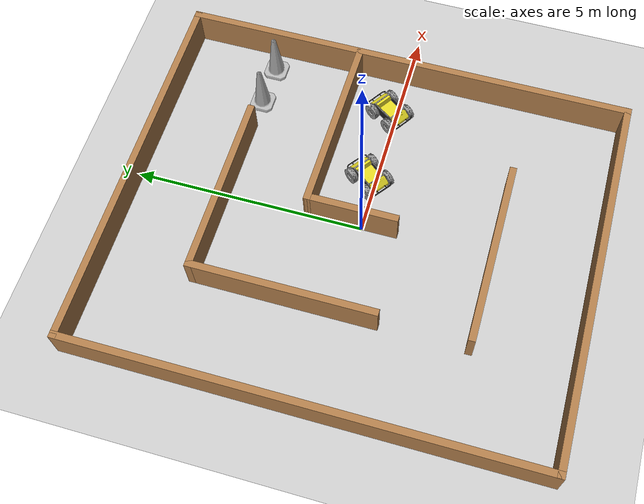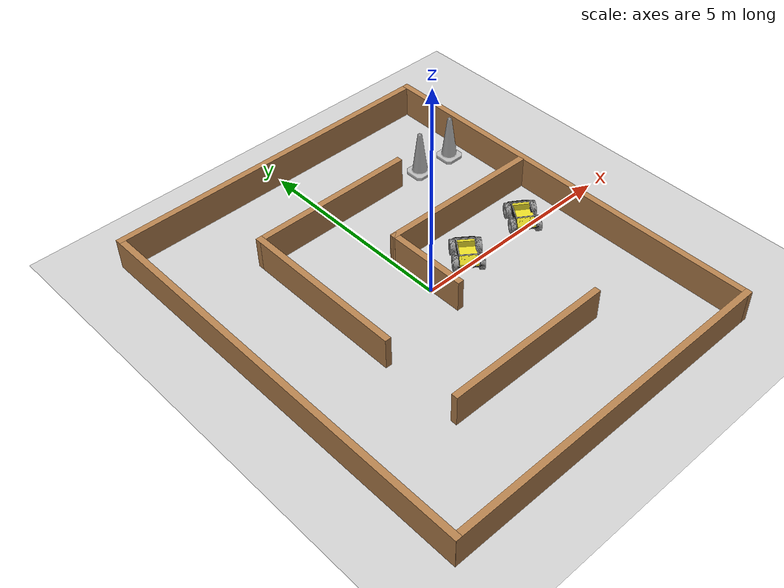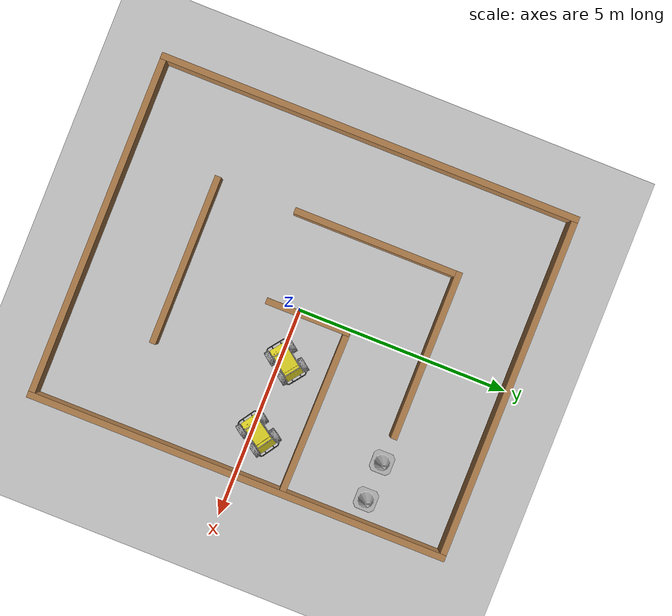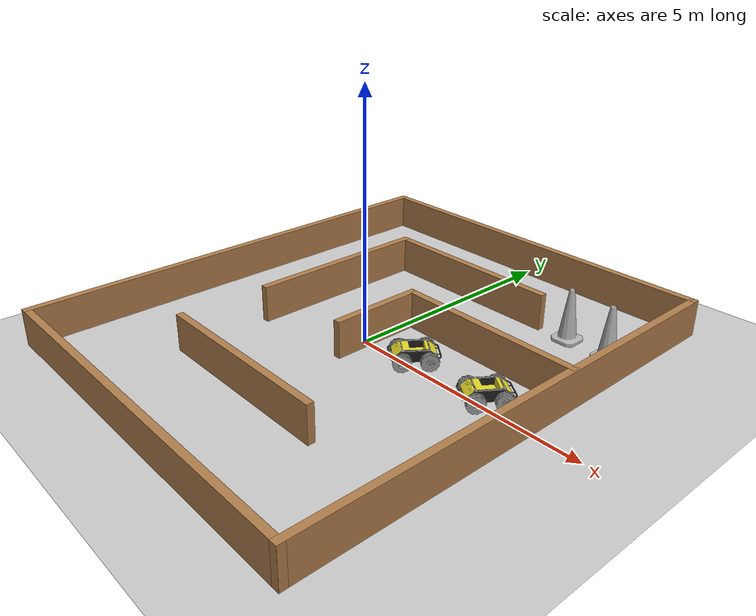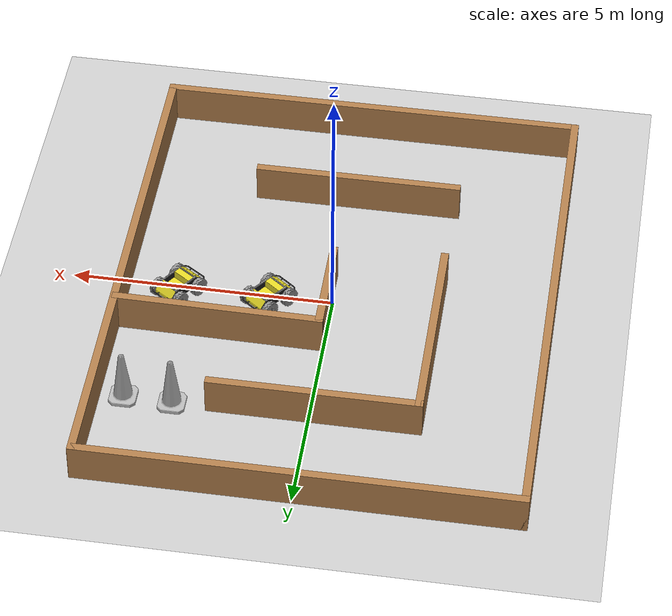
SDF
<sdf version="1.6">
 <world name="default">
  <light name="sun" type="directional">
   <pose>0 0 10 0 -0 0</pose>
   <diffuse>0.8 0.8 0.8 1</diffuse>
   <specular>0.2 0.2 0.2 1</specular>
   <attenuation>
    <range>1000</range>
    <constant>0.9</constant>
    <linear>0.01</linear>
    <quadratic>0.001</quadratic>
   </attenuation>
   <direction>0.5 0.1 -0.9</direction>
  </light>
  <scene><ambient>0.4 0.4 0.4 1</ambient><background>0.7 0.7 0.7 1</background><shadows>1</shadows></scene>
  <physics name="default_physics" default="0" type="ode">
   <max_step_size>0.01</max_step_size>
   <real_time_factor>1</real_time_factor>
   <real_time_update_rate>100</real_time_update_rate>
  </physics>
  <gravity>0 0 -9.8</gravity>
  <magnetic_field>6e-06 2.3e-05 -4.2e-05</magnetic_field>
  <atmosphere type="adiabatic"/>
  <spherical_coordinates>
   <surface_model>EARTH_WGS84</surface_model>
   <latitude_deg>0</latitude_deg>
   <longitude_deg>0</longitude_deg>
   <elevation>0</elevation>
   <heading_deg>0</heading_deg>
  </spherical_coordinates>
  <model name="ground_plane">
   <static>1</static>
   <link name="link">
    <collision name="collision">
     <geometry><plane><normal>0 0 1</normal><size>100 100</size></plane></geometry>
     <surface><friction><ode><mu>100</mu><mu2>50</mu2></ode></friction></surface>
    </collision>
    <visual name="visual">
     <cast_shadows>0</cast_shadows>
     <geometry><plane><normal>0 0 1</normal><size>100 100</size></plane></geometry>
     <material>
      <script><uri>file://media/materials/scripts/gazebo.material</uri><name>Gazebo/Grey</name></script>
     </material>
    </visual>
   </link>
   <pose>3.63562 1.30612 0 0 -0 0</pose>
  </model>
  <model name="Construction Cone">
   <link name="link">
    <collision name="collision">
     <geometry>
      <mesh><scale>10 10 10</scale><uri>model://construction_cone/meshes/construction_cone.dae</uri></mesh>
     </geometry>
    </collision>
    <visual name="visual">
     <geometry>
      <mesh><scale>10 10 10</scale><uri>model://construction_cone/meshes/construction_cone.dae</uri></mesh>
     </geometry>
    </visual>
    <inertial>
     <inertia><ixx>1</ixx><ixy>0</ixy><ixz>0</ixz><iyy>1</iyy><iyz>0</iyz><izz>1</izz></inertia>
     <mass>1</mass>
    </inertial>
   </link>
   <pose>3.4435 2.97998 0 -1e-06 0 0</pose>
  </model>
  <model name="Construction Cone_clone">
   <link name="link">
    <collision name="collision">
     <geometry>
      <mesh><scale>10 10 10</scale><uri>model://construction_cone/meshes/construction_cone.dae</uri></mesh>
     </geometry>
    </collision>
    <visual name="visual">
     <geometry>
      <mesh><scale>10 10 10</scale><uri>model://construction_cone/meshes/construction_cone.dae</uri></mesh>
     </geometry>
    </visual>
    <inertial>
     <inertia><ixx>1</ixx><ixy>0</ixy><ixz>0</ixz><iyy>1</iyy><iyz>0</iyz><izz>1</izz></inertia>
     <mass>1</mass>
    </inertial>
   </link>
   <pose>2.52891 3.01195 0 -1e-06 0 0</pose>
  </model>
  <model name="husky">
   <pose>1.19351 0.156422 0.141787 -2e-05 2.5e-05 0.919885</pose>
   <link name="base_link">
    <collision name="collision">
     <pose>0 0 0.1 0 -0 0</pose>
     <geometry><box><size>1.0074 0.5709 0.2675</size></box></geometry>
    </collision>
    <inertial>
     <mass>33.855</mass>
     <pose>-0.085613 -0.00084 0.238145 0 -0 0</pose>
     <inertia>
      <ixx>2.2343</ixx>
      <ixy>-0.023642</ixy>
      <ixz>0.275174</ixz>
      <iyy>3.42518</iyy>
      <iyz>0.00239624</iyz>
      <izz>2.1241</izz>
     </inertia>
    </inertial>
    <visual name="base">
     <geometry><mesh><uri>model://husky/meshes/base_link.stl</uri></mesh></geometry>
     <material><script><name>Gazebo/FlatBlack</name><uri>__default__</uri></script></material>
    </visual>
    <visual name="top_plate">
     <geometry><mesh><uri>model://husky/meshes/top_plate.stl</uri></mesh></geometry>
     <material><script><name>Gazebo/Yellow</name><uri>__default__</uri></script></material>
    </visual>
    <visual name="front_bumper">
     <pose>0.47 0 0.091 0 -0 0</pose>
     <geometry><mesh><uri>model://husky/meshes/bumper.stl</uri></mesh></geometry>
     <material><script><name>Gazebo/FlatBlack</name><uri>__default__</uri></script></material>
    </visual>
    <visual name="rear_bumper">
     <pose>-0.47 0 0.091 0 -0 3.141</pose>
     <geometry><mesh><uri>model://husky/meshes/bumper.stl</uri></mesh></geometry>
     <material><script><name>Gazebo/FlatBlack</name><uri>__default__</uri></script></material>
    </visual>
    <visual name="user_rail">
     <pose>0.272 0 0.245 0 -0 0</pose>
     <geometry><mesh><uri>model://husky/meshes/user_rail.stl</uri></mesh></geometry>
     <material><script><name>Gazebo/Grey</name><uri>__default__</uri></script></material>
    </visual>
   </link>
   <link name="back_left_wheel">
    <pose>-0.256 0.285475 0.035 0 -0 0</pose>
    <inertial>
     <mass>2.6357</mass>
     <inertia>
      <ixx>0.0246688</ixx>
      <ixy>0</ixy>
      <ixz>0</ixz>
      <iyy>0.0246688</iyy>
      <iyz>0</iyz>
      <izz>0.0441058</izz>
     </inertia>
    </inertial>
    <collision name="back_left_wheel_collision">
     <pose>0 0 0 -1.5707 0 0</pose>
     <geometry><cylinder><radius>0.17775</radius><length>0.1143</length></cylinder></geometry>
     <surface>
      <friction><ode><mu>100000</mu><mu2>100000</mu2><slip1>0</slip1><slip2>0</slip2></ode></friction>
     </surface>
    </collision>
    <visual name="back_left_wheel">
     <pose>0 0 0 -3.14159 0 0</pose>
     <geometry><mesh><uri>model://husky/meshes/wheel.stl</uri></mesh></geometry>
     <material><script><name>Gazebo/Grey</name><uri>__default__</uri></script></material>
    </visual>
   </link>
   <joint name="back_left_joint" type="revolute">
    <parent>base_link</parent>
    <child>back_left_wheel</child>
    <axis>
     <xyz>0 1 0</xyz>
     <use_parent_model_frame>1</use_parent_model_frame>
     <limit><lower>-1e+16</lower><upper>1e+16</upper></limit>
     <dynamics><spring_reference>0</spring_reference><spring_stiffness>0</spring_stiffness></dynamics>
    </axis>
    <physics><ode><limit><cfm>0</cfm><erp>0.9</erp></limit></ode></physics>
   </joint>
   <link name="back_right_wheel">
    <pose>-0.256 -0.285475 0.035 0 -0 0</pose>
    <inertial>
     <mass>2.6357</mass>
     <inertia>
      <ixx>0.0246688</ixx>
      <ixy>0</ixy>
      <ixz>0</ixz>
      <iyy>0.0246688</iyy>
      <iyz>0</iyz>
      <izz>0.0441058</izz>
     </inertia>
    </inertial>
    <collision name="back_right_wheel_collision">
     <pose>0 0 0 -1.5707 0 0</pose>
     <geometry><cylinder><radius>0.17775</radius><length>0.1143</length></cylinder></geometry>
     <surface>
      <friction><ode><mu>100000</mu><mu2>100000</mu2><slip1>0</slip1><slip2>0</slip2></ode></friction>
     </surface>
    </collision>
    <visual name="back_right_wheel">
     <pose>0 0 0 -3.14159 0 0</pose>
     <geometry><mesh><uri>model://husky/meshes/wheel.stl</uri></mesh></geometry>
     <material><script><name>Gazebo/Grey</name><uri>__default__</uri></script></material>
    </visual>
   </link>
   <joint name="back_right_joint" type="revolute">
    <parent>base_link</parent>
    <child>back_right_wheel</child>
    <axis>
     <xyz>0 1 0</xyz>
     <use_parent_model_frame>1</use_parent_model_frame>
     <limit><lower>-1e+16</lower><upper>1e+16</upper></limit>
     <dynamics><spring_reference>0</spring_reference><spring_stiffness>0</spring_stiffness></dynamics>
    </axis>
    <physics><ode><limit><cfm>0</cfm><erp>0.9</erp></limit></ode></physics>
   </joint>
   <link name="front_left_wheel">
    <pose>0.256 0.285475 0.035 0 -0 0</pose>
    <inertial>
     <mass>2.6357</mass>
     <inertia>
      <ixx>0.0246688</ixx>
      <ixy>0</ixy>
      <ixz>0</ixz>
      <iyy>0.0246688</iyy>
      <iyz>0</iyz>
      <izz>0.0441058</izz>
     </inertia>
    </inertial>
    <collision name="front_left_wheel_collision">
     <pose>0 0 0 -1.5707 0 0</pose>
     <geometry><cylinder><radius>0.17775</radius><length>0.1143</length></cylinder></geometry>
     <surface>
      <friction><ode><mu>100000</mu><mu2>100000</mu2><slip1>0</slip1><slip2>0</slip2></ode></friction>
     </surface>
    </collision>
    <visual name="front_left_wheel">
     <pose>0 0 0 -3.14159 0 0</pose>
     <geometry><mesh><uri>model://husky/meshes/wheel.stl</uri></mesh></geometry>
     <material><script><name>Gazebo/Grey</name><uri>__default__</uri></script></material>
    </visual>
   </link>
   <joint name="front_left_joint" type="revolute">
    <parent>base_link</parent>
    <child>front_left_wheel</child>
    <axis>
     <xyz>0 1 0</xyz>
     <use_parent_model_frame>1</use_parent_model_frame>
     <limit><lower>-1e+16</lower><upper>1e+16</upper></limit>
     <dynamics><spring_reference>0</spring_reference><spring_stiffness>0</spring_stiffness></dynamics>
    </axis>
    <physics><ode><limit><cfm>0</cfm><erp>0.9</erp></limit></ode></physics>
   </joint>
   <link name="front_right_wheel">
    <pose>0.256 -0.285475 0.035 0 -0 0</pose>
    <inertial>
     <mass>2.6357</mass>
     <inertia>
      <ixx>0.0246688</ixx>
      <ixy>0</ixy>
      <ixz>0</ixz>
      <iyy>0.0246688</iyy>
      <iyz>0</iyz>
      <izz>0.0441058</izz>
     </inertia>
    </inertial>
    <collision name="front_right_wheel_collision">
     <pose>0 0 0 -1.5707 0 0</pose>
     <geometry><cylinder><radius>0.17775</radius><length>0.1143</length></cylinder></geometry>
     <surface>
      <friction><ode><mu>100000</mu><mu2>100000</mu2><slip1>0</slip1><slip2>0</slip2></ode></friction>
     </surface>
    </collision>
    <visual name="front_right_wheel">
     <pose>0 0 0 -3.14159 0 0</pose>
     <geometry><mesh><uri>model://husky/meshes/wheel.stl</uri></mesh></geometry>
     <material><script><name>Gazebo/Grey</name><uri>__default__</uri></script></material>
    </visual>
   </link>
   <joint name="front_right_joint" type="revolute">
    <parent>base_link</parent>
    <child>front_right_wheel</child>
    <axis>
     <xyz>0 1 0</xyz>
     <use_parent_model_frame>1</use_parent_model_frame>
     <limit><lower>-1e+16</lower><upper>1e+16</upper></limit>
     <dynamics><spring_reference>0</spring_reference><spring_stiffness>0</spring_stiffness></dynamics>
    </axis>
    <physics><ode><limit><cfm>0</cfm><erp>0.9</erp></limit></ode></physics>
   </joint>
   <plugin name="husky_diff_controller" filename="libhusky_gazebo_plugins.so">
    <alwaysOn>true</alwaysOn>
    <updateRate>100.0</updateRate>
    <backLeftJoint>back_left_joint</backLeftJoint>
    <backRightJoint>back_right_joint</backRightJoint>
    <frontLeftJoint>front_left_joint</frontLeftJoint>
    <frontRightJoint>front_right_joint</frontRightJoint>
    <wheelSeparation>0.5709</wheelSeparation>
    <wheelDiameter>0.3555</wheelDiameter>
    <torque>35</torque>
   </plugin>
  </model>
  <model name="husky_clone">
   <pose>2.93279 0.164342 0.142759 -2.6e-05 1.6e-05 0.977247</pose>
   <link name="base_link">
    <collision name="collision">
     <pose>0 0 0.1 0 -0 0</pose>
     <geometry><box><size>1.0074 0.5709 0.2675</size></box></geometry>
    </collision>
    <inertial>
     <mass>33.855</mass>
     <pose>-0.085613 -0.00084 0.238145 0 -0 0</pose>
     <inertia>
      <ixx>2.2343</ixx>
      <ixy>-0.023642</ixy>
      <ixz>0.275174</ixz>
      <iyy>3.42518</iyy>
      <iyz>0.00239624</iyz>
      <izz>2.1241</izz>
     </inertia>
    </inertial>
    <visual name="base">
     <geometry><mesh><uri>model://husky/meshes/base_link.stl</uri></mesh></geometry>
     <material><script><name>Gazebo/FlatBlack</name><uri>__default__</uri></script></material>
    </visual>
    <visual name="top_plate">
     <geometry><mesh><uri>model://husky/meshes/top_plate.stl</uri></mesh></geometry>
     <material><script><name>Gazebo/Yellow</name><uri>__default__</uri></script></material>
    </visual>
    <visual name="front_bumper">
     <pose>0.47 0 0.091 0 -0 0</pose>
     <geometry><mesh><uri>model://husky/meshes/bumper.stl</uri></mesh></geometry>
     <material><script><name>Gazebo/FlatBlack</name><uri>__default__</uri></script></material>
    </visual>
    <visual name="rear_bumper">
     <pose>-0.47 0 0.091 0 -0 3.141</pose>
     <geometry><mesh><uri>model://husky/meshes/bumper.stl</uri></mesh></geometry>
     <material><script><name>Gazebo/FlatBlack</name><uri>__default__</uri></script></material>
    </visual>
    <visual name="user_rail">
     <pose>0.272 0 0.245 0 -0 0</pose>
     <geometry><mesh><uri>model://husky/meshes/user_rail.stl</uri></mesh></geometry>
     <material><script><name>Gazebo/Grey</name><uri>__default__</uri></script></material>
    </visual>
   </link>
   <link name="back_left_wheel">
    <pose>-0.256 0.285475 0.035 0 -0 0</pose>
    <inertial>
     <mass>2.6357</mass>
     <inertia>
      <ixx>0.0246688</ixx>
      <ixy>0</ixy>
      <ixz>0</ixz>
      <iyy>0.0246688</iyy>
      <iyz>0</iyz>
      <izz>0.0441058</izz>
     </inertia>
    </inertial>
    <collision name="back_left_wheel_collision">
     <pose>0 0 0 -1.5707 0 0</pose>
     <geometry><cylinder><radius>0.17775</radius><length>0.1143</length></cylinder></geometry>
     <surface>
      <friction><ode><mu>100000</mu><mu2>100000</mu2><slip1>0</slip1><slip2>0</slip2></ode></friction>
     </surface>
    </collision>
    <visual name="back_left_wheel">
     <pose>0 0 0 -3.14159 0 0</pose>
     <geometry><mesh><uri>model://husky/meshes/wheel.stl</uri></mesh></geometry>
     <material><script><name>Gazebo/Grey</name><uri>__default__</uri></script></material>
    </visual>
   </link>
   <joint name="back_left_joint" type="revolute">
    <parent>base_link</parent>
    <child>back_left_wheel</child>
    <axis>
     <xyz>0 1 0</xyz>
     <use_parent_model_frame>1</use_parent_model_frame>
     <limit><lower>-1e+16</lower><upper>1e+16</upper></limit>
     <dynamics><spring_reference>0</spring_reference><spring_stiffness>0</spring_stiffness></dynamics>
    </axis>
    <physics><ode><limit><cfm>0</cfm><erp>0.9</erp></limit></ode></physics>
   </joint>
   <link name="back_right_wheel">
    <pose>-0.256 -0.285475 0.035 0 -0 0</pose>
    <inertial>
     <mass>2.6357</mass>
     <inertia>
      <ixx>0.0246688</ixx>
      <ixy>0</ixy>
      <ixz>0</ixz>
      <iyy>0.0246688</iyy>
      <iyz>0</iyz>
      <izz>0.0441058</izz>
     </inertia>
    </inertial>
    <collision name="back_right_wheel_collision">
     <pose>0 0 0 -1.5707 0 0</pose>
     <geometry><cylinder><radius>0.17775</radius><length>0.1143</length></cylinder></geometry>
     <surface>
      <friction><ode><mu>100000</mu><mu2>100000</mu2><slip1>0</slip1><slip2>0</slip2></ode></friction>
     </surface>
    </collision>
    <visual name="back_right_wheel">
     <pose>0 0 0 -3.14159 0 0</pose>
     <geometry><mesh><uri>model://husky/meshes/wheel.stl</uri></mesh></geometry>
     <material><script><name>Gazebo/Grey</name><uri>__default__</uri></script></material>
    </visual>
   </link>
   <joint name="back_right_joint" type="revolute">
    <parent>base_link</parent>
    <child>back_right_wheel</child>
    <axis>
     <xyz>0 1 0</xyz>
     <use_parent_model_frame>1</use_parent_model_frame>
     <limit><lower>-1e+16</lower><upper>1e+16</upper></limit>
     <dynamics><spring_reference>0</spring_reference><spring_stiffness>0</spring_stiffness></dynamics>
    </axis>
    <physics><ode><limit><cfm>0</cfm><erp>0.9</erp></limit></ode></physics>
   </joint>
   <link name="front_left_wheel">
    <pose>0.256 0.285475 0.035 0 -0 0</pose>
    <inertial>
     <mass>2.6357</mass>
     <inertia>
      <ixx>0.0246688</ixx>
      <ixy>0</ixy>
      <ixz>0</ixz>
      <iyy>0.0246688</iyy>
      <iyz>0</iyz>
      <izz>0.0441058</izz>
     </inertia>
    </inertial>
    <collision name="front_left_wheel_collision">
     <pose>0 0 0 -1.5707 0 0</pose>
     <geometry><cylinder><radius>0.17775</radius><length>0.1143</length></cylinder></geometry>
     <surface>
      <friction><ode><mu>100000</mu><mu2>100000</mu2><slip1>0</slip1><slip2>0</slip2></ode></friction>
     </surface>
    </collision>
    <visual name="front_left_wheel">
     <pose>0 0 0 -3.14159 0 0</pose>
     <geometry><mesh><uri>model://husky/meshes/wheel.stl</uri></mesh></geometry>
     <material><script><name>Gazebo/Grey</name><uri>__default__</uri></script></material>
    </visual>
   </link>
   <joint name="front_left_joint" type="revolute">
    <parent>base_link</parent>
    <child>front_left_wheel</child>
    <axis>
     <xyz>0 1 0</xyz>
     <use_parent_model_frame>1</use_parent_model_frame>
     <limit><lower>-1e+16</lower><upper>1e+16</upper></limit>
     <dynamics><spring_reference>0</spring_reference><spring_stiffness>0</spring_stiffness></dynamics>
    </axis>
    <physics><ode><limit><cfm>0</cfm><erp>0.9</erp></limit></ode></physics>
   </joint>
   <link name="front_right_wheel">
    <pose>0.256 -0.285475 0.035 0 -0 0</pose>
    <inertial>
     <mass>2.6357</mass>
     <inertia>
      <ixx>0.0246688</ixx>
      <ixy>0</ixy>
      <ixz>0</ixz>
      <iyy>0.0246688</iyy>
      <iyz>0</iyz>
      <izz>0.0441058</izz>
     </inertia>
    </inertial>
    <collision name="front_right_wheel_collision">
     <pose>0 0 0 -1.5707 0 0</pose>
     <geometry><cylinder><radius>0.17775</radius><length>0.1143</length></cylinder></geometry>
     <surface>
      <friction><ode><mu>100000</mu><mu2>100000</mu2><slip1>0</slip1><slip2>0</slip2></ode></friction>
     </surface>
    </collision>
    <visual name="front_right_wheel">
     <pose>0 0 0 -3.14159 0 0</pose>
     <geometry><mesh><uri>model://husky/meshes/wheel.stl</uri></mesh></geometry>
     <material><script><name>Gazebo/Grey</name><uri>__default__</uri></script></material>
    </visual>
   </link>
   <joint name="front_right_joint" type="revolute">
    <parent>base_link</parent>
    <child>front_right_wheel</child>
    <axis>
     <xyz>0 1 0</xyz>
     <use_parent_model_frame>1</use_parent_model_frame>
     <limit><lower>-1e+16</lower><upper>1e+16</upper></limit>
     <dynamics><spring_reference>0</spring_reference><spring_stiffness>0</spring_stiffness></dynamics>
    </axis>
    <physics><ode><limit><cfm>0</cfm><erp>0.9</erp></limit></ode></physics>
   </joint>
   <plugin name="husky_diff_controller" filename="libhusky_gazebo_plugins.so">
    <alwaysOn>true</alwaysOn>
    <updateRate>100.0</updateRate>
    <backLeftJoint>back_left_joint</backLeftJoint>
    <backRightJoint>back_right_joint</backRightJoint>
    <frontLeftJoint>front_left_joint</frontLeftJoint>
    <frontRightJoint>front_right_joint</frontRightJoint>
    <wheelSeparation>0.5709</wheelSeparation>
    <wheelDiameter>0.3555</wheelDiameter>
    <torque>35</torque>
   </plugin>
  </model>
  <light name="user_spot_light_0_clone" type="spot">
   <pose>3.10841 0.983433 1.74637 0 -0 0</pose>
   <diffuse>0.5 0.5 0.5 1</diffuse>
   <specular>0.1 0.1 0.1 1</specular>
   <direction>0 0 -1</direction>
   <attenuation>
    <range>20</range>
    <constant>0.5</constant>
    <linear>0.01</linear>
    <quadratic>0.001</quadratic>
   </attenuation>
   <spot><inner_angle>0.6</inner_angle><outer_angle>1</outer_angle><falloff>1</falloff></spot>
  </light>
  <model name="maze">
   <link name="Wall_13">
    <pose>-4.1112 -0.0133 -1 0 -0 1.5708</pose>
    <inertial>
     <mass>1</mass>
     <inertia><ixx>1</ixx><ixy>0</ixy><ixz>0</ixz><iyy>1</iyy><iyz>0</iyz><izz>1</izz></inertia>
    </inertial>
    <visual name="Wall_13_Visual">
     <pose>0 0 1.25 0 -0 0</pose>
     <geometry><box><size>10 0.15 1</size></box></geometry>
     <material>
      <script><uri>file://media/materials/scripts/gazebo.material</uri><name>Gazebo/Wood</name></script>
      <ambient>1 1 1 1</ambient>
      <shader type="pixel"><normal_map>__default__</normal_map></shader>
      <diffuse>1 1 1 1</diffuse>
      <specular>0.2 0.2 0.2 1</specular>
      <emissive>0 0 0 1</emissive>
     </material>
     <meta><layer>0</layer></meta>
    </visual>
    <collision name="Wall_13_Collision">
     <pose>0 0 1.25 0 -0 0</pose>
     <geometry><box><size>10 0.15 1</size></box></geometry>
     <surface>
      <friction>
       <ode><mu>1</mu><mu2>1</mu2><fdir1>0 0 0</fdir1><slip1>0</slip1><slip2>0</slip2></ode>
       <torsional>
        <coefficient>1</coefficient>
        <patch_radius>0</patch_radius>
        <surface_radius>0</surface_radius>
        <use_patch_radius>1</use_patch_radius>
        <ode><slip>0</slip></ode>
       </torsional>
      </friction>
      <bounce><restitution_coefficient>0</restitution_coefficient><threshold>1e+06</threshold></bounce>
      <contact>
       <collide_without_contact>0</collide_without_contact>
       <collide_without_contact_bitmask>1</collide_without_contact_bitmask>
       <collide_bitmask>1</collide_bitmask>
       <ode>
        <soft_cfm>0</soft_cfm>
        <soft_erp>0.2</soft_erp>
        <kp>1e+13</kp>
        <kd>1</kd>
        <max_vel>0.01</max_vel>
        <min_depth>0</min_depth>
       </ode>
       <bullet>
        <split_impulse>1</split_impulse>
        <split_impulse_penetration_threshold>-0.01</split_impulse_penetration_threshold>
        <soft_cfm>0</soft_cfm>
        <soft_erp>0.2</soft_erp>
        <kp>1e+13</kp>
        <kd>1</kd>
       </bullet>
      </contact>
     </surface>
    </collision>
   </link>
   <link name="Wall_13_clone">
    <pose>3.9916 -0.015899 -1 0 -0 1.5708</pose>
    <inertial>
     <mass>1</mass>
     <inertia><ixx>1</ixx><ixy>0</ixy><ixz>0</ixz><iyy>1</iyy><iyz>0</iyz><izz>1</izz></inertia>
    </inertial>
    <visual name="Wall_13_Visual">
     <pose>0 0 1.25 0 -0 0</pose>
     <geometry><box><size>10 0.15 1</size></box></geometry>
     <material>
      <script><uri>file://media/materials/scripts/gazebo.material</uri><name>Gazebo/Wood</name></script>
      <ambient>1 1 1 1</ambient>
      <shader type="pixel"><normal_map>__default__</normal_map></shader>
      <diffuse>1 1 1 1</diffuse>
      <specular>0.2 0.2 0.2 1</specular>
      <emissive>0 0 0 1</emissive>
     </material>
     <meta><layer>0</layer></meta>
    </visual>
    <collision name="Wall_13_Collision">
     <pose>0 0 1.25 0 -0 0</pose>
     <geometry><box><size>10 0.15 1</size></box></geometry>
     <surface>
      <friction>
       <ode><mu>1</mu><mu2>1</mu2><fdir1>0 0 0</fdir1><slip1>0</slip1><slip2>0</slip2></ode>
       <torsional>
        <coefficient>1</coefficient>
        <patch_radius>0</patch_radius>
        <surface_radius>0</surface_radius>
        <use_patch_radius>1</use_patch_radius>
        <ode><slip>0</slip></ode>
       </torsional>
      </friction>
      <bounce><restitution_coefficient>0</restitution_coefficient><threshold>1e+06</threshold></bounce>
      <contact>
       <collide_without_contact>0</collide_without_contact>
       <collide_without_contact_bitmask>1</collide_without_contact_bitmask>
       <collide_bitmask>1</collide_bitmask>
       <ode>
        <soft_cfm>0</soft_cfm>
        <soft_erp>0.2</soft_erp>
        <kp>1e+13</kp>
        <kd>1</kd>
        <max_vel>0.01</max_vel>
        <min_depth>0</min_depth>
       </ode>
       <bullet>
        <split_impulse>1</split_impulse>
        <split_impulse_penetration_threshold>-0.01</split_impulse_penetration_threshold>
        <soft_cfm>0</soft_cfm>
        <soft_erp>0.2</soft_erp>
        <kp>1e+13</kp>
        <kd>1</kd>
       </bullet>
      </contact>
     </surface>
    </collision>
   </link>
   <link name="Wall_14">
    <pose>-0.061201 4.9117 -1 0 -0 0</pose>
    <inertial>
     <mass>1</mass>
     <inertia><ixx>1</ixx><ixy>0</ixy><ixz>0</ixz><iyy>1</iyy><iyz>0</iyz><izz>1</izz></inertia>
    </inertial>
    <visual name="Wall_14_Visual">
     <pose>0 0 1.25 0 -0 0</pose>
     <geometry><box><size>8.25 0.15 1</size></box></geometry>
     <material>
      <script><uri>file://media/materials/scripts/gazebo.material</uri><name>Gazebo/Wood</name></script>
      <ambient>1 1 1 1</ambient>
      <shader type="pixel"><normal_map>__default__</normal_map></shader>
      <diffuse>1 1 1 1</diffuse>
      <specular>0.2 0.2 0.2 1</specular>
      <emissive>0 0 0 1</emissive>
     </material>
     <meta><layer>0</layer></meta>
    </visual>
    <collision name="Wall_14_Collision">
     <pose>0 0 1.25 0 -0 0</pose>
     <geometry><box><size>8.25 0.15 1</size></box></geometry>
     <surface>
      <friction>
       <ode><mu>1</mu><mu2>1</mu2><fdir1>0 0 0</fdir1><slip1>0</slip1><slip2>0</slip2></ode>
       <torsional>
        <coefficient>1</coefficient>
        <patch_radius>0</patch_radius>
        <surface_radius>0</surface_radius>
        <use_patch_radius>1</use_patch_radius>
        <ode><slip>0</slip></ode>
       </torsional>
      </friction>
      <bounce><restitution_coefficient>0</restitution_coefficient><threshold>1e+06</threshold></bounce>
      <contact>
       <collide_without_contact>0</collide_without_contact>
       <collide_without_contact_bitmask>1</collide_without_contact_bitmask>
       <collide_bitmask>1</collide_bitmask>
       <ode>
        <soft_cfm>0</soft_cfm>
        <soft_erp>0.2</soft_erp>
        <kp>1e+13</kp>
        <kd>1</kd>
        <max_vel>0.01</max_vel>
        <min_depth>0</min_depth>
       </ode>
       <bullet>
        <split_impulse>1</split_impulse>
        <split_impulse_penetration_threshold>-0.01</split_impulse_penetration_threshold>
        <soft_cfm>0</soft_cfm>
        <soft_erp>0.2</soft_erp>
        <kp>1e+13</kp>
        <kd>1</kd>
       </bullet>
      </contact>
     </surface>
    </collision>
   </link>
   <link name="Wall_14_clone">
    <pose>-0.05664 -4.93934 -1 0 -0 0</pose>
    <inertial>
     <mass>1</mass>
     <inertia><ixx>1</ixx><ixy>0</ixy><ixz>0</ixz><iyy>1</iyy><iyz>0</iyz><izz>1</izz></inertia>
    </inertial>
    <visual name="Wall_14_Visual">
     <pose>0 0 1.25 0 -0 0</pose>
     <geometry><box><size>8.25 0.15 1</size></box></geometry>
     <material>
      <script><uri>file://media/materials/scripts/gazebo.material</uri><name>Gazebo/Wood</name></script>
      <ambient>1 1 1 1</ambient>
      <shader type="pixel"><normal_map>__default__</normal_map></shader>
      <diffuse>1 1 1 1</diffuse>
      <specular>0.2 0.2 0.2 1</specular>
      <emissive>0 0 0 1</emissive>
     </material>
     <meta><layer>0</layer></meta>
    </visual>
    <collision name="Wall_14_Collision">
     <pose>0 0 1.25 0 -0 0</pose>
     <geometry><box><size>8.25 0.15 1</size></box></geometry>
     <surface>
      <friction>
       <ode><mu>1</mu><mu2>1</mu2><fdir1>0 0 0</fdir1><slip1>0</slip1><slip2>0</slip2></ode>
       <torsional>
        <coefficient>1</coefficient>
        <patch_radius>0</patch_radius>
        <surface_radius>0</surface_radius>
        <use_patch_radius>1</use_patch_radius>
        <ode><slip>0</slip></ode>
       </torsional>
      </friction>
      <bounce><restitution_coefficient>0</restitution_coefficient><threshold>1e+06</threshold></bounce>
      <contact>
       <collide_without_contact>0</collide_without_contact>
       <collide_without_contact_bitmask>1</collide_without_contact_bitmask>
       <collide_bitmask>1</collide_bitmask>
       <ode>
        <soft_cfm>0</soft_cfm>
        <soft_erp>0.2</soft_erp>
        <kp>1e+13</kp>
        <kd>1</kd>
        <max_vel>0.01</max_vel>
        <min_depth>0</min_depth>
       </ode>
       <bullet>
        <split_impulse>1</split_impulse>
        <split_impulse_penetration_threshold>-0.01</split_impulse_penetration_threshold>
        <soft_cfm>0</soft_cfm>
        <soft_erp>0.2</soft_erp>
        <kp>1e+13</kp>
        <kd>1</kd>
       </bullet>
      </contact>
     </surface>
    </collision>
   </link>
   <link name="Wall_24">
    <pose>-0.066104 2.94035 -1 0 -0 3.14159</pose>
    <inertial>
     <mass>1</mass>
     <inertia><ixx>1</ixx><ixy>0</ixy><ixz>0</ixz><iyy>1</iyy><iyz>0</iyz><izz>1</izz></inertia>
    </inertial>
    <visual name="Wall_24_Visual">
     <pose>0 0 1.25 0 -0 0</pose>
     <geometry><box><size>4 0.15 1</size></box></geometry>
     <material>
      <script><uri>file://media/materials/scripts/gazebo.material</uri><name>Gazebo/Wood</name></script>
      <ambient>1 1 1 1</ambient>
      <shader type="pixel"><normal_map>__default__</normal_map></shader>
      <diffuse>1 1 1 1</diffuse>
      <specular>0.2 0.2 0.2 1</specular>
      <emissive>0 0 0 1</emissive>
     </material>
     <meta><layer>0</layer></meta>
    </visual>
    <collision name="Wall_24_Collision">
     <pose>0 0 1.25 0 -0 0</pose>
     <geometry><box><size>4 0.15 1</size></box></geometry>
     <surface>
      <friction>
       <ode><mu>1</mu><mu2>1</mu2><fdir1>0 0 0</fdir1><slip1>0</slip1><slip2>0</slip2></ode>
       <torsional>
        <coefficient>1</coefficient>
        <patch_radius>0</patch_radius>
        <surface_radius>0</surface_radius>
        <use_patch_radius>1</use_patch_radius>
        <ode><slip>0</slip></ode>
       </torsional>
      </friction>
      <bounce><restitution_coefficient>0</restitution_coefficient><threshold>1e+06</threshold></bounce>
      <contact>
       <collide_without_contact>0</collide_without_contact>
       <collide_without_contact_bitmask>1</collide_without_contact_bitmask>
       <collide_bitmask>1</collide_bitmask>
       <ode>
        <soft_cfm>0</soft_cfm>
        <soft_erp>0.2</soft_erp>
        <kp>1e+13</kp>
        <kd>1</kd>
        <max_vel>0.01</max_vel>
        <min_depth>0</min_depth>
       </ode>
       <bullet>
        <split_impulse>1</split_impulse>
        <split_impulse_penetration_threshold>-0.01</split_impulse_penetration_threshold>
        <soft_cfm>0</soft_cfm>
        <soft_erp>0.2</soft_erp>
        <kp>1e+13</kp>
        <kd>1</kd>
       </bullet>
      </contact>
     </surface>
    </collision>
   </link>
   <link name="Wall_28">
    <pose>0.108896 0.165352 -1 0 0 -1.5708</pose>
    <inertial>
     <mass>1</mass>
     <inertia><ixx>1</ixx><ixy>0</ixy><ixz>0</ixz><iyy>1</iyy><iyz>0</iyz><izz>1</izz></inertia>
    </inertial>
    <visual name="Wall_28_Visual">
     <pose>0 0 1.25 0 -0 0</pose>
     <geometry><box><size>2 0.15 1</size></box></geometry>
     <material>
      <script><uri>file://media/materials/scripts/gazebo.material</uri><name>Gazebo/Wood</name></script>
      <ambient>1 1 1 1</ambient>
      <shader type="pixel"><normal_map>__default__</normal_map></shader>
      <diffuse>1 1 1 1</diffuse>
      <specular>0.2 0.2 0.2 1</specular>
      <emissive>0 0 0 1</emissive>
     </material>
     <meta><layer>0</layer></meta>
    </visual>
    <collision name="Wall_28_Collision">
     <pose>0 0 1.25 0 -0 0</pose>
     <geometry><box><size>2 0.15 1</size></box></geometry>
     <surface>
      <friction>
       <ode><mu>1</mu><mu2>1</mu2><fdir1>0 0 0</fdir1><slip1>0</slip1><slip2>0</slip2></ode>
       <torsional>
        <coefficient>1</coefficient>
        <patch_radius>0</patch_radius>
        <surface_radius>0</surface_radius>
        <use_patch_radius>1</use_patch_radius>
        <ode><slip>0</slip></ode>
       </torsional>
      </friction>
      <bounce><restitution_coefficient>0</restitution_coefficient><threshold>1e+06</threshold></bounce>
      <contact>
       <collide_without_contact>0</collide_without_contact>
       <collide_without_contact_bitmask>1</collide_without_contact_bitmask>
       <collide_bitmask>1</collide_bitmask>
       <ode>
        <soft_cfm>0</soft_cfm>
        <soft_erp>0.2</soft_erp>
        <kp>1e+13</kp>
        <kd>1</kd>
        <max_vel>0.01</max_vel>
        <min_depth>0</min_depth>
       </ode>
       <bullet>
        <split_impulse>1</split_impulse>
        <split_impulse_penetration_threshold>-0.01</split_impulse_penetration_threshold>
        <soft_cfm>0</soft_cfm>
        <soft_erp>0.2</soft_erp>
        <kp>1e+13</kp>
        <kd>1</kd>
       </bullet>
      </contact>
     </surface>
    </collision>
   </link>
   <link name="Wall_30">
    <pose>-0.070541 -2.8423 -1 0 -0 3.14159</pose>
    <inertial>
     <mass>1</mass>
     <inertia><ixx>1</ixx><ixy>0</ixy><ixz>0</ixz><iyy>1</iyy><iyz>0</iyz><izz>1</izz></inertia>
    </inertial>
    <visual name="Wall_30_Visual">
     <pose>0 0 1.25 0 -0 0</pose>
     <geometry><box><size>4 0.15 1</size></box></geometry>
     <material>
      <script><uri>file://media/materials/scripts/gazebo.material</uri><name>Gazebo/Wood</name></script>
      <ambient>1 1 1 1</ambient>
      <shader type="pixel"><normal_map>__default__</normal_map></shader>
      <diffuse>1 1 1 1</diffuse>
      <specular>0.2 0.2 0.2 1</specular>
      <emissive>0 0 0 1</emissive>
     </material>
     <meta><layer>0</layer></meta>
    </visual>
    <collision name="Wall_30_Collision">
     <pose>0 0 1.25 0 -0 0</pose>
     <geometry><box><size>4 0.15 1</size></box></geometry>
     <surface>
      <friction>
       <ode><mu>1</mu><mu2>1</mu2><fdir1>0 0 0</fdir1><slip1>0</slip1><slip2>0</slip2></ode>
       <torsional>
        <coefficient>1</coefficient>
        <patch_radius>0</patch_radius>
        <surface_radius>0</surface_radius>
        <use_patch_radius>1</use_patch_radius>
        <ode><slip>0</slip></ode>
       </torsional>
      </friction>
      <bounce><restitution_coefficient>0</restitution_coefficient><threshold>1e+06</threshold></bounce>
      <contact>
       <collide_without_contact>0</collide_without_contact>
       <collide_without_contact_bitmask>1</collide_without_contact_bitmask>
       <collide_bitmask>1</collide_bitmask>
       <ode>
        <soft_cfm>0</soft_cfm>
        <soft_erp>0.2</soft_erp>
        <kp>1e+13</kp>
        <kd>1</kd>
        <max_vel>0.01</max_vel>
        <min_depth>0</min_depth>
       </ode>
       <bullet>
        <split_impulse>1</split_impulse>
        <split_impulse_penetration_threshold>-0.01</split_impulse_penetration_threshold>
        <soft_cfm>0</soft_cfm>
        <soft_erp>0.2</soft_erp>
        <kp>1e+13</kp>
        <kd>1</kd>
       </bullet>
      </contact>
     </surface>
    </collision>
   </link>
   <link name="Wall_33">
    <pose>2.0339 1.09035 -1 0 0 -0.012015</pose>
    <inertial>
     <mass>1</mass>
     <inertia><ixx>1</ixx><ixy>0</ixy><ixz>0</ixz><iyy>1</iyy><iyz>0</iyz><izz>1</izz></inertia>
    </inertial>
    <visual name="Wall_33_Visual">
     <pose>0 0 1.25 0 -0 0</pose>
     <geometry><box><size>4 0.15 1</size></box></geometry>
     <material>
      <script><uri>file://media/materials/scripts/gazebo.material</uri><name>Gazebo/Wood</name></script>
      <ambient>1 1 1 1</ambient>
      <shader type="pixel"><normal_map>__default__</normal_map></shader>
      <diffuse>1 1 1 1</diffuse>
      <specular>0.2 0.2 0.2 1</specular>
      <emissive>0 0 0 1</emissive>
     </material>
     <meta><layer>0</layer></meta>
    </visual>
    <collision name="Wall_33_Collision">
     <pose>0 0 1.25 0 -0 0</pose>
     <geometry><box><size>4 0.15 1</size></box></geometry>
     <surface>
      <friction>
       <ode><mu>1</mu><mu2>1</mu2><fdir1>0 0 0</fdir1><slip1>0</slip1><slip2>0</slip2></ode>
       <torsional>
        <coefficient>1</coefficient>
        <patch_radius>0</patch_radius>
        <surface_radius>0</surface_radius>
        <use_patch_radius>1</use_patch_radius>
        <ode><slip>0</slip></ode>
       </torsional>
      </friction>
      <bounce><restitution_coefficient>0</restitution_coefficient><threshold>1e+06</threshold></bounce>
      <contact>
       <collide_without_contact>0</collide_without_contact>
       <collide_without_contact_bitmask>1</collide_without_contact_bitmask>
       <collide_bitmask>1</collide_bitmask>
       <ode>
        <soft_cfm>0</soft_cfm>
        <soft_erp>0.2</soft_erp>
        <kp>1e+13</kp>
        <kd>1</kd>
        <max_vel>0.01</max_vel>
        <min_depth>0</min_depth>
       </ode>
       <bullet>
        <split_impulse>1</split_impulse>
        <split_impulse_penetration_threshold>-0.01</split_impulse_penetration_threshold>
        <soft_cfm>0</soft_cfm>
        <soft_erp>0.2</soft_erp>
        <kp>1e+13</kp>
        <kd>1</kd>
       </bullet>
      </contact>
     </surface>
    </collision>
   </link>
   <link name="Wall_41">
    <pose>-1.9911 1.01535 -1 0 0 -1.5708</pose>
    <inertial>
     <mass>1</mass>
     <inertia><ixx>1</ixx><ixy>0</ixy><ixz>0</ixz><iyy>1</iyy><iyz>0</iyz><izz>1</izz></inertia>
    </inertial>
    <visual name="Wall_41_Visual">
     <pose>0 0 1.25 0 -0 0</pose>
     <geometry><box><size>4 0.15 1</size></box></geometry>
     <material>
      <script><uri>file://media/materials/scripts/gazebo.material</uri><name>Gazebo/Wood</name></script>
      <ambient>1 1 1 1</ambient>
      <shader type="pixel"><normal_map>__default__</normal_map></shader>
      <diffuse>1 1 1 1</diffuse>
      <specular>0.2 0.2 0.2 1</specular>
      <emissive>0 0 0 1</emissive>
     </material>
     <meta><layer>0</layer></meta>
    </visual>
    <collision name="Wall_41_Collision">
     <pose>0 0 1.25 0 -0 0</pose>
     <geometry><box><size>4 0.15 1</size></box></geometry>
     <surface>
      <friction>
       <ode><mu>1</mu><mu2>1</mu2><fdir1>0 0 0</fdir1><slip1>0</slip1><slip2>0</slip2></ode>
       <torsional>
        <coefficient>1</coefficient>
        <patch_radius>0</patch_radius>
        <surface_radius>0</surface_radius>
        <use_patch_radius>1</use_patch_radius>
        <ode><slip>0</slip></ode>
       </torsional>
      </friction>
      <bounce><restitution_coefficient>0</restitution_coefficient><threshold>1e+06</threshold></bounce>
      <contact>
       <collide_without_contact>0</collide_without_contact>
       <collide_without_contact_bitmask>1</collide_without_contact_bitmask>
       <collide_bitmask>1</collide_bitmask>
       <ode>
        <soft_cfm>0</soft_cfm>
        <soft_erp>0.2</soft_erp>
        <kp>1e+13</kp>
        <kd>1</kd>
        <max_vel>0.01</max_vel>
        <min_depth>0</min_depth>
       </ode>
       <bullet>
        <split_impulse>1</split_impulse>
        <split_impulse_penetration_threshold>-0.01</split_impulse_penetration_threshold>
        <soft_cfm>0</soft_cfm>
        <soft_erp>0.2</soft_erp>
        <kp>1e+13</kp>
        <kd>1</kd>
       </bullet>
      </contact>
     </surface>
    </collision>
   </link>
   <static>1</static>
   <pose>-0.03203 0.065817 0 0 -0 0</pose>
  </model>
 </world>
</sdf>
